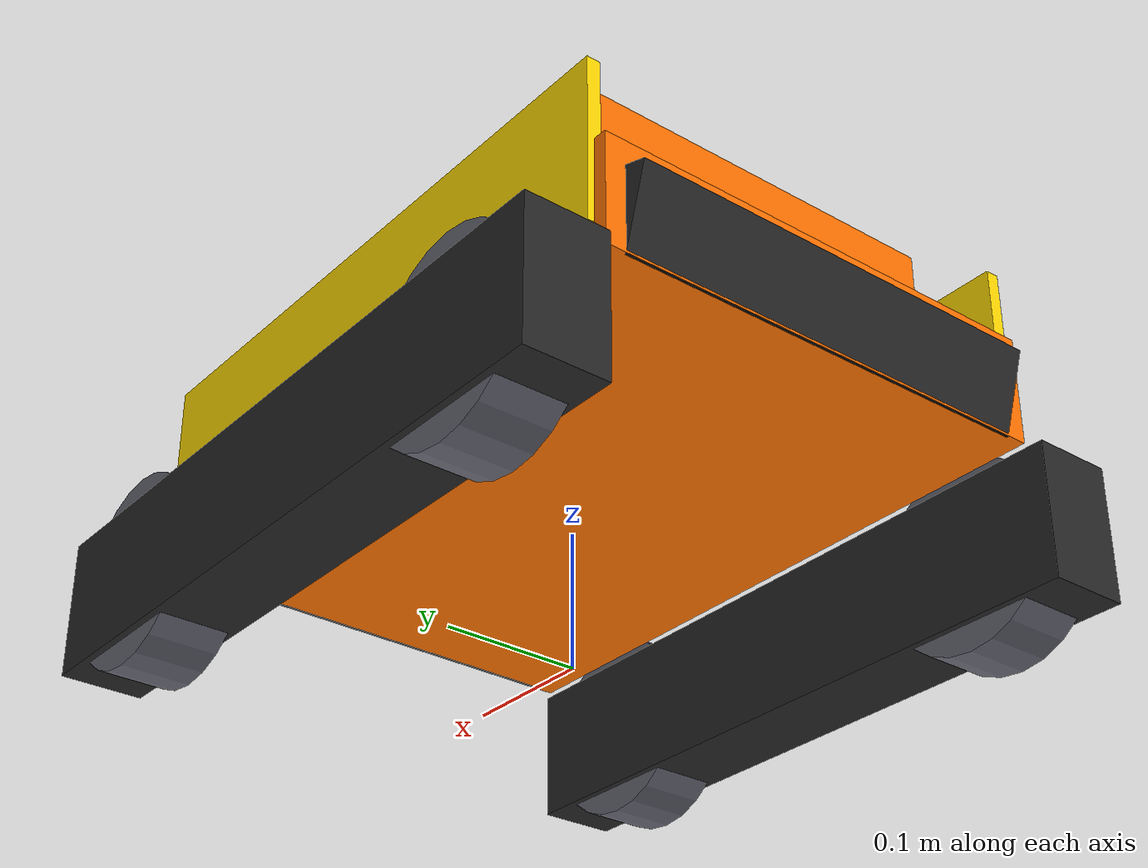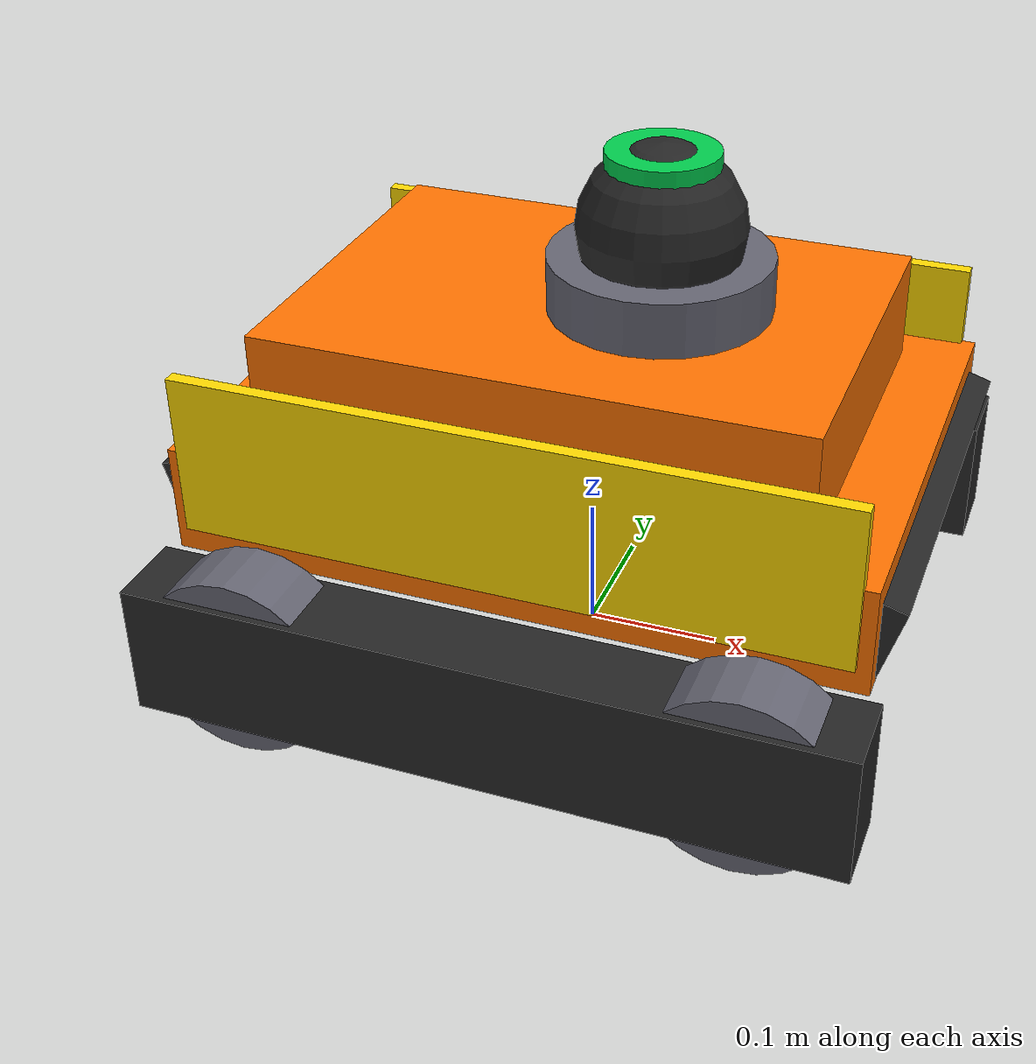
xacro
<?xml version="1.0"?>
<robot xmlns:xacro="http://www.ros.org/wiki/xacro" name="tank_bot">

    <!-- TANK-STYLE TRACKED ROBOT - Industrial Design -->

    <!-- Robot Material Colors - Industrial Orange/Black Theme -->
    <material name="industrial_orange">
        <color rgba="1.0 0.45 0.0 1"/>
    </material>

    <material name="dark_metal">
        <color rgba="0.15 0.15 0.15 1"/>
    </material>

    <material name="steel_gray">
        <color rgba="0.4 0.4 0.45 1"/>
    </material>

    <material name="warning_yellow">
        <color rgba="1.0 0.85 0.0 1"/>
    </material>

    <material name="sensor_green">
        <color rgba="0.0 0.8 0.3 1"/>
    </material>

    <!-- Base Link -->
    <link name="base_link">
    </link>

    <!-- MAIN CHASSIS - Armored Tank Body -->
    <joint name="chassis_joint" type="fixed">
        <parent link="base_link"/>
        <child link="chassis"/>
        <origin xyz="0 0 0.12"/>
    </joint>

    <link name="chassis">
        <!-- Main Body - Lower Section -->
        <visual>
            <origin xyz="0 0 0.04" rpy="0 0 0"/>
            <geometry>
                <box size="0.5 0.35 0.08"/>
            </geometry>
            <material name="industrial_orange"/>
        </visual>
        <!-- Main Body - Upper Section (Narrower) -->
        <visual>
            <origin xyz="0 0 0.12" rpy="0 0 0"/>
            <geometry>
                <box size="0.4 0.28 0.08"/>
            </geometry>
            <material name="industrial_orange"/>
        </visual>
        <!-- Front Armor Plate -->
        <visual>
            <origin xyz="0.22 0 0.04" rpy="0 0.3 0"/>
            <geometry>
                <box size="0.08 0.32 0.06"/>
            </geometry>
            <material name="dark_metal"/>
        </visual>
        <!-- Rear Armor Plate -->
        <visual>
            <origin xyz="-0.22 0 0.04" rpy="0 -0.3 0"/>
            <geometry>
                <box size="0.08 0.32 0.06"/>
            </geometry>
            <material name="dark_metal"/>
        </visual>
        <!-- Warning Stripes Left -->
        <visual>
            <origin xyz="0 0.175 0.08" rpy="0 0 0"/>
            <geometry>
                <box size="0.48 0.01 0.12"/>
            </geometry>
            <material name="warning_yellow"/>
        </visual>
        <!-- Warning Stripes Right -->
        <visual>
            <origin xyz="0 -0.175 0.08" rpy="0 0 0"/>
            <geometry>
                <box size="0.48 0.01 0.12"/>
            </geometry>
            <material name="warning_yellow"/>
        </visual>
        <collision>
            <origin xyz="0 0 0.08" rpy="0 0 0"/>
            <geometry>
                <box size="0.5 0.35 0.16"/>
            </geometry>
        </collision>
        <inertial>
            <origin xyz="0 0 0.08" rpy="0 0 0"/>
            <mass value="5.0"/>
            <inertia ixx="0.05" ixy="0.0" ixz="0.0" iyy="0.08" iyz="0.0" izz="0.1"/>
        </inertial>
    </link>

    <!-- SENSOR TURRET -->
    <joint name="turret_joint" type="fixed">
        <parent link="chassis"/>
        <child link="turret"/>
        <origin xyz="0.05 0 0.16" rpy="0 0 0"/>
    </joint>

    <link name="turret">
        <!-- Turret Base -->
        <visual>
            <origin xyz="0 0 0.02" rpy="0 0 0"/>
            <geometry>
                <cylinder radius="0.08" length="0.04"/>
            </geometry>
            <material name="steel_gray"/>
        </visual>
        <!-- Turret Dome -->
        <visual>
            <origin xyz="0 0 0.06" rpy="0 0 0"/>
            <geometry>
                <sphere radius="0.06"/>
            </geometry>
            <material name="dark_metal"/>
        </visual>
        <collision>
            <origin xyz="0 0 0.04" rpy="0 0 0"/>
            <geometry>
                <cylinder radius="0.08" length="0.08"/>
            </geometry>
        </collision>
        <inertial>
            <origin xyz="0 0 0.04" rpy="0 0 0"/>
            <mass value="0.3"/>
            <inertia ixx="0.001" ixy="0" ixz="0" iyy="0.001" iyz="0" izz="0.001"/>
        </inertial>
    </link>

    <!-- LIDAR SENSOR -->
    <joint name="laser_joint" type="fixed">
        <parent link="turret"/>
        <child link="laser_frame"/>
        <origin xyz="0 0 0.1" rpy="0 0 0"/>
    </joint>

    <link name="laser_frame">
        <visual>
            <geometry>
                <cylinder radius="0.04" length="0.03"/>
            </geometry>
            <material name="sensor_green"/>
        </visual>
        <collision>
            <geometry>
                <cylinder radius="0.04" length="0.03"/>
            </geometry>
        </collision>
        <inertial>
            <mass value="0.1"/>
            <inertia ixx="0.0001" ixy="0" ixz="0" iyy="0.0001" iyz="0" izz="0.0001"/>
        </inertial>
    </link>

    <gazebo reference="laser_frame">
        <sensor name="lidar" type="gpu_lidar">
            <pose>0 0 0 0 0 0</pose>
            <always_on>true</always_on>
            <visualize>true</visualize>
            <update_rate>10</update_rate>
            <topic>scan</topic>
            <frame_id>laser_frame</frame_id>
            <ray>
                <scan>
                    <horizontal>
                        <samples>360</samples>
                        <resolution>1</resolution>
                        <min_angle>-3.14</min_angle>
                        <max_angle>3.14</max_angle>
                    </horizontal>
                </scan>
                <range>
                    <min>0.3</min>
                    <max>12</max>
                </range>
            </ray>
        </sensor>
    </gazebo>

    <!-- TRACK SYSTEM - Left Side -->

    <!-- Left Track Housing -->
    <joint name="left_track_housing_joint" type="fixed">
        <parent link="base_link"/>
        <child link="left_track_housing"/>
        <origin xyz="0 0.21 0.07" rpy="0 0 0"/>
    </joint>

    <link name="left_track_housing">
        <visual>
            <geometry>
                <box size="0.52 0.06 0.1"/>
            </geometry>
            <material name="dark_metal"/>
        </visual>
        <collision>
            <geometry>
                <box size="0.52 0.06 0.1"/>
            </geometry>
        </collision>
        <inertial>
            <mass value="0.5"/>
            <inertia ixx="0.001" ixy="0" ixz="0" iyy="0.01" iyz="0" izz="0.01"/>
        </inertial>
    </link>

    <!-- Left Drive Wheel (Rear) -->
    <link name="left_drive_wheel">
        <visual>
            <origin xyz="0 0 0" rpy="${pi/2} 0 0"/>
            <geometry>
                <cylinder radius="0.07" length="0.05"/>
            </geometry>
            <material name="steel_gray"/>
        </visual>
        <collision>
            <origin xyz="0 0 0" rpy="${pi/2} 0 0"/>
            <geometry>
                <cylinder radius="0.07" length="0.05"/>
            </geometry>
        </collision>
        <inertial>
            <origin xyz="0 0 0" rpy="0 0 0"/>
            <mass value="0.8"/>
            <inertia ixx="0.001" ixy="0.0" ixz="0.0" iyy="0.001" iyz="0.0" izz="0.002"/>
        </inertial>
    </link>

    <joint name="left_drive_wheel_joint" type="continuous">
        <parent link="base_link"/>
        <child link="left_drive_wheel"/>
        <origin xyz="-0.18 0.21 0.07" rpy="0 0 0"/>
        <axis xyz="0 1 0"/>
    </joint>

    <!-- Left Idler Wheel (Front) -->
    <link name="left_idler_wheel">
        <visual>
            <origin xyz="0 0 0" rpy="${pi/2} 0 0"/>
            <geometry>
                <cylinder radius="0.07" length="0.05"/>
            </geometry>
            <material name="steel_gray"/>
        </visual>
        <collision>
            <origin xyz="0 0 0" rpy="${pi/2} 0 0"/>
            <geometry>
                <cylinder radius="0.07" length="0.05"/>
            </geometry>
        </collision>
        <inertial>
            <origin xyz="0 0 0" rpy="0 0 0"/>
            <mass value="0.8"/>
            <inertia ixx="0.001" ixy="0.0" ixz="0.0" iyy="0.001" iyz="0.0" izz="0.002"/>
        </inertial>
    </link>

    <joint name="left_idler_wheel_joint" type="continuous">
        <parent link="base_link"/>
        <child link="left_idler_wheel"/>
        <origin xyz="0.18 0.21 0.07" rpy="0 0 0"/>
        <axis xyz="0 1 0"/>
    </joint>

    <!-- TRACK SYSTEM - Right Side -->

    <!-- Right Track Housing -->
    <joint name="right_track_housing_joint" type="fixed">
        <parent link="base_link"/>
        <child link="right_track_housing"/>
        <origin xyz="0 -0.21 0.07" rpy="0 0 0"/>
    </joint>

    <link name="right_track_housing">
        <visual>
            <geometry>
                <box size="0.52 0.06 0.1"/>
            </geometry>
            <material name="dark_metal"/>
        </visual>
        <collision>
            <geometry>
                <box size="0.52 0.06 0.1"/>
            </geometry>
        </collision>
        <inertial>
            <mass value="0.5"/>
            <inertia ixx="0.001" ixy="0" ixz="0" iyy="0.01" iyz="0" izz="0.01"/>
        </inertial>
    </link>

    <!-- Right Drive Wheel (Rear) -->
    <link name="right_drive_wheel">
        <visual>
            <origin xyz="0 0 0" rpy="${pi/2} 0 0"/>
            <geometry>
                <cylinder radius="0.07" length="0.05"/>
            </geometry>
            <material name="steel_gray"/>
        </visual>
        <collision>
            <origin xyz="0 0 0" rpy="${pi/2} 0 0"/>
            <geometry>
                <cylinder radius="0.07" length="0.05"/>
            </geometry>
        </collision>
        <inertial>
            <origin xyz="0 0 0" rpy="0 0 0"/>
            <mass value="0.8"/>
            <inertia ixx="0.001" ixy="0.0" ixz="0.0" iyy="0.001" iyz="0.0" izz="0.002"/>
        </inertial>
    </link>

    <joint name="right_drive_wheel_joint" type="continuous">
        <parent link="base_link"/>
        <child link="right_drive_wheel"/>
        <origin xyz="-0.18 -0.21 0.07" rpy="0 0 0"/>
        <axis xyz="0 1 0"/>
    </joint>

    <!-- Right Idler Wheel (Front) -->
    <link name="right_idler_wheel">
        <visual>
            <origin xyz="0 0 0" rpy="${pi/2} 0 0"/>
            <geometry>
                <cylinder radius="0.07" length="0.05"/>
            </geometry>
            <material name="steel_gray"/>
        </visual>
        <collision>
            <origin xyz="0 0 0" rpy="${pi/2} 0 0"/>
            <geometry>
                <cylinder radius="0.07" length="0.05"/>
            </geometry>
        </collision>
        <inertial>
            <origin xyz="0 0 0" rpy="0 0 0"/>
            <mass value="0.8"/>
            <inertia ixx="0.001" ixy="0.0" ixz="0.0" iyy="0.001" iyz="0.0" izz="0.002"/>
        </inertial>
    </link>

    <joint name="right_idler_wheel_joint" type="continuous">
        <parent link="base_link"/>
        <child link="right_idler_wheel"/>
        <origin xyz="0.18 -0.21 0.07" rpy="0 0 0"/>
        <axis xyz="0 1 0"/>
    </joint>

    <!-- GAZEBO FRICTION SETTINGS -->
    <gazebo reference="left_drive_wheel">
        <mu1>2.0</mu1>
        <mu2>2.0</mu2>
    </gazebo>

    <gazebo reference="right_drive_wheel">
        <mu1>2.0</mu1>
        <mu2>2.0</mu2>
    </gazebo>

    <gazebo reference="left_idler_wheel">
        <mu1>0.5</mu1>
        <mu2>0.5</mu2>
    </gazebo>

    <gazebo reference="right_idler_wheel">
        <mu1>0.5</mu1>
        <mu2>0.5</mu2>
    </gazebo>

    <!-- GAZEBO PLUGINS -->
    <gazebo>
        <!-- Differential Drive using rear drive wheels -->
        <plugin filename="gz-sim-diff-drive-system" name="gz::sim::systems::DiffDrive">
            <left_joint>left_drive_wheel_joint</left_joint>
            <right_joint>right_drive_wheel_joint</right_joint>
            <wheel_separation>0.42</wheel_separation>
            <wheel_radius>0.07</wheel_radius>
            <odom_publish_frequency>50</odom_publish_frequency>
            <topic>cmd_vel</topic>
            <odom_topic>odom</odom_topic>
            <frame_id>odom</frame_id>
            <child_frame_id>base_link</child_frame_id>
            <covariance_x>0.0001</covariance_x>
            <covariance_y>0.0001</covariance_y>
            <covariance_yaw>0.01</covariance_yaw>
        </plugin>

        <!-- Joint State Publisher -->
        <plugin filename="gz-sim-joint-state-publisher-system" name="gz::sim::systems::JointStatePublisher">
            <topic>joint_states</topic>
            <joint_name>left_drive_wheel_joint</joint_name>
            <joint_name>right_drive_wheel_joint</joint_name>
            <joint_name>left_idler_wheel_joint</joint_name>
            <joint_name>right_idler_wheel_joint</joint_name>
        </plugin>
    </gazebo>

</robot>
